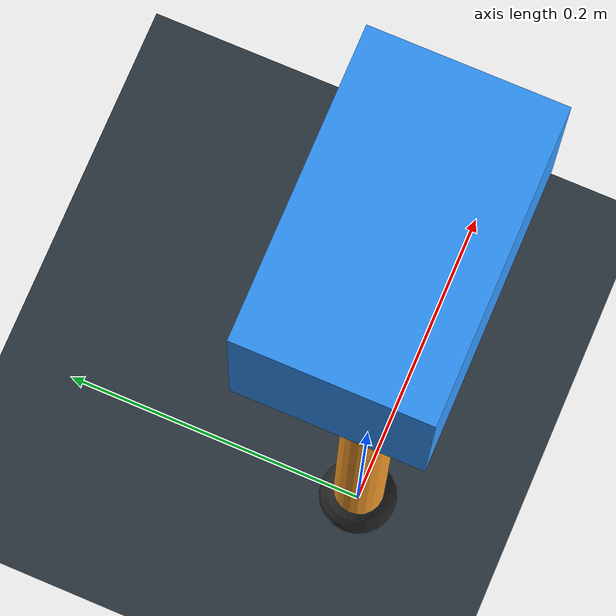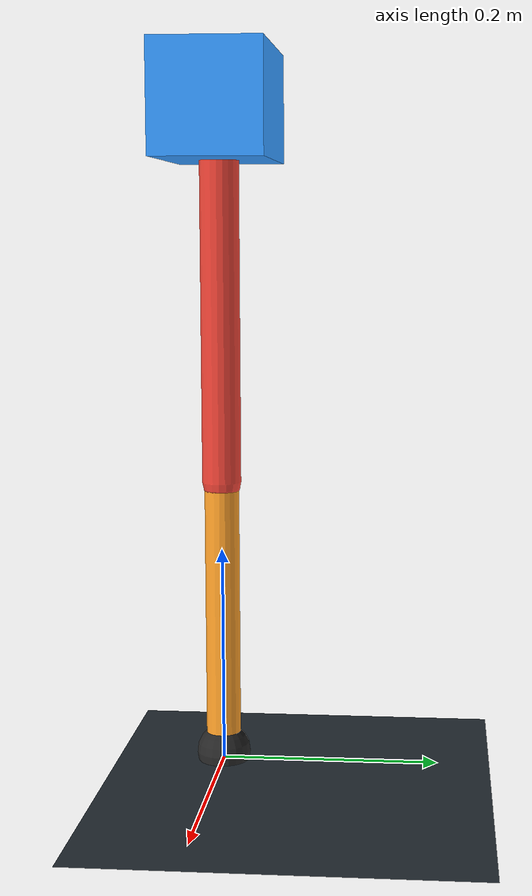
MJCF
<mujoco model="single_axis_two_bar">
  <compiler angle="radian" inertiafromgeom="true"/>
  <option timestep="0.001" integrator="implicitfast" gravity="0 0 -9.81"/>
  <default>
    <joint damping="0.08"/>
    <geom friction="1.2 0.01 0.0001" condim="3"/>
  </default>
  <worldbody>
    <geom name="floor" type="plane" size="5 5 0.1" rgba="0.18 0.22 0.25 1"/>
    <body name="carriage" pos="0 0 0.6055088309797169">
      <joint name="pole_slide" type="slide" axis="0 0 1"/>
      <geom name="payload" type="box" size="0.08 0.05 0.05" mass="2.335245475032109" rgba="0.2 0.6 1 1"/>
      <body name="thigh" pos="0 0 0">
        <joint name="hip" type="hinge" axis="0 1 0"/>
        <geom name="thigh_link" type="capsule" fromto="0 0 0 0 0 -0.3422512571720154" size="0.018" mass="0.24385854318641598" rgba="0.9 0.25 0.2 1"/>
        <body name="shank" pos="0 0 -0.3422512571720154">
          <joint name="knee" type="hinge" axis="0 1 0"/>
          <geom name="shank_link" type="capsule" fromto="0 0 0 0 0 -0.2562114551782082" size="0.016" mass="0.18255404735015324" rgba="0.95 0.6 0.15 1"/>
          <geom name="foot" type="sphere" pos="0 0 -0.2562114551782082" size="0.025" mass="0.03" rgba="0.15 0.15 0.15 1"/>
          <site name="toe" pos="0 0 -0.2562114551782082" size="0.008"/>
        </body>
      </body>
    </body>
  </worldbody>
  <actuator>
    <motor name="hip_motor" joint="hip" ctrlrange="-31.836972976506278 31.836972976506278"/>
    <motor name="knee_motor" joint="knee" ctrlrange="-104.64143534298735 104.64143534298735"/>
  </actuator>
</mujoco>
